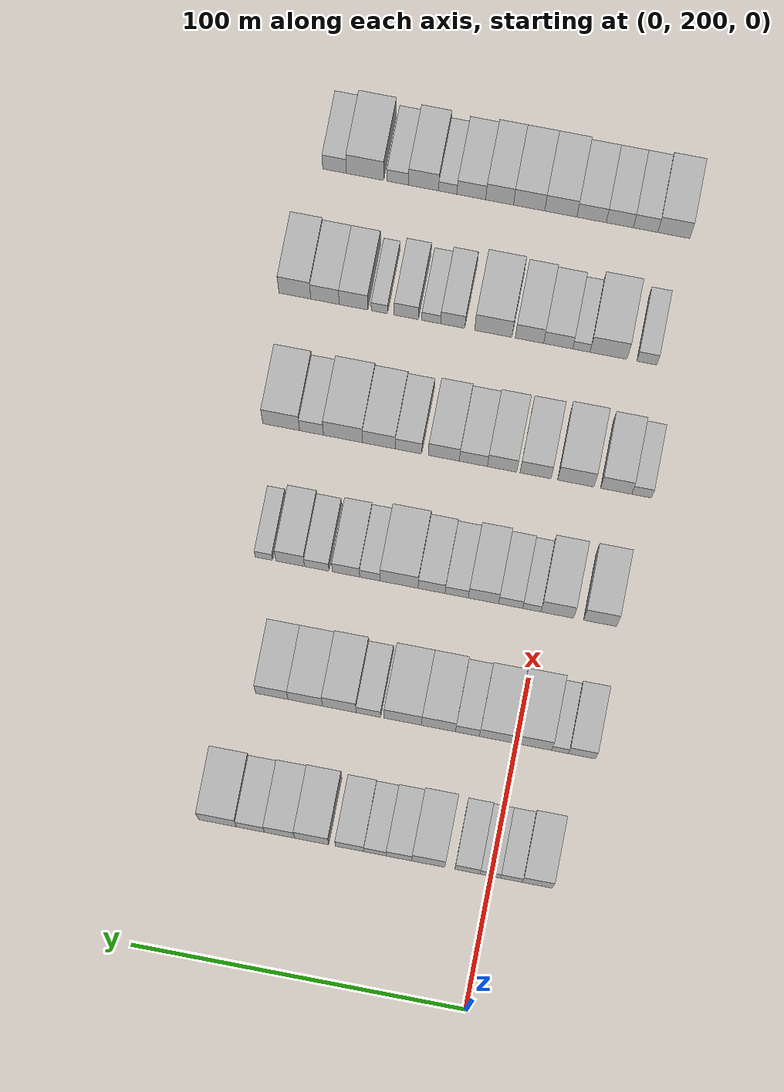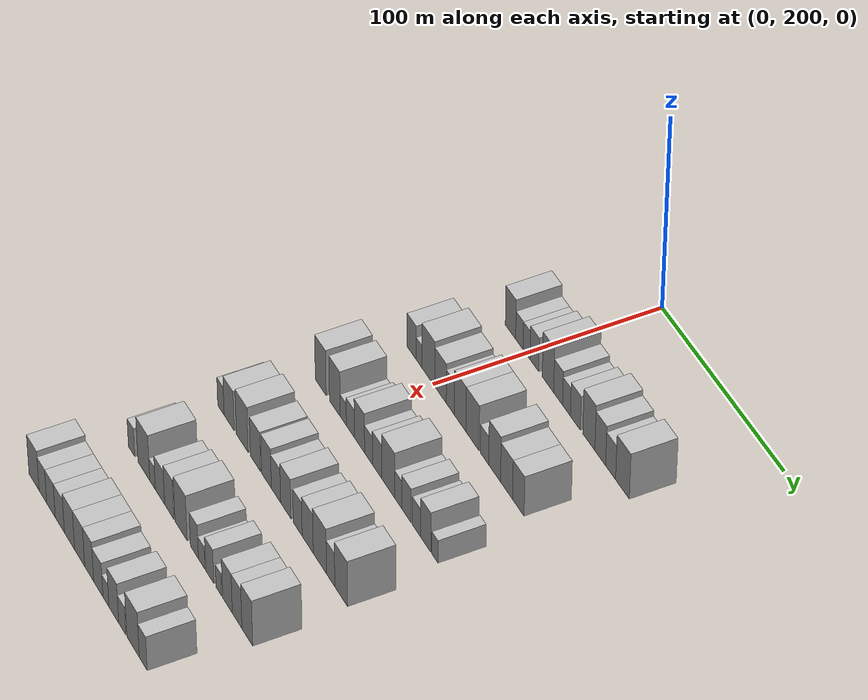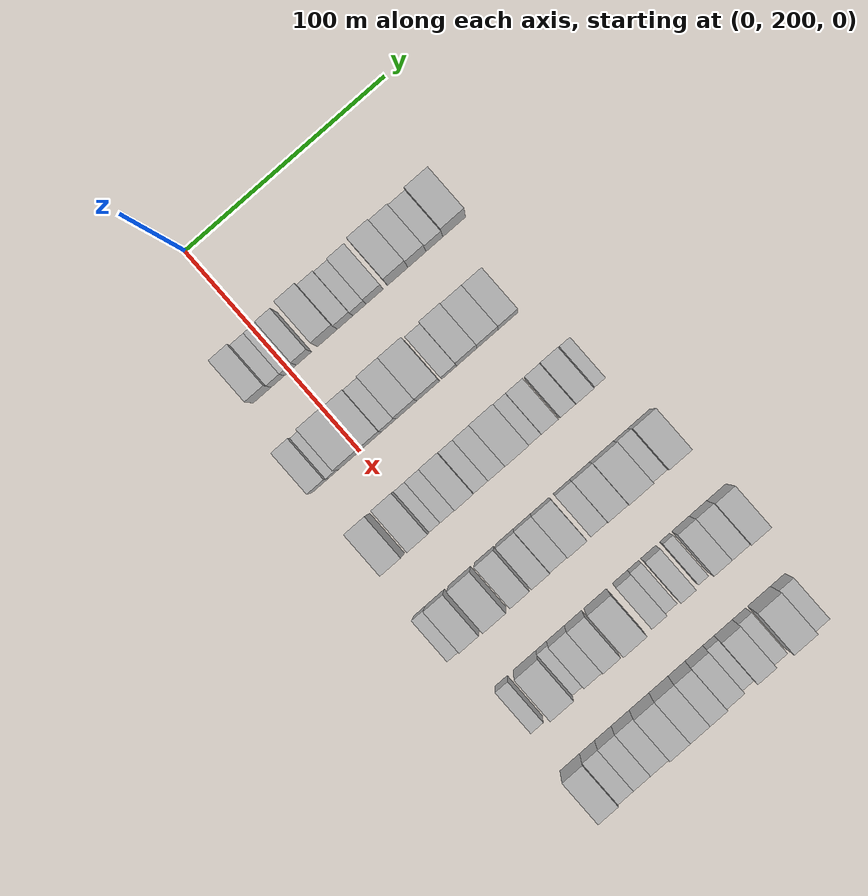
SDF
<sdf version="1.6">
 <world name="default">
  <model name="building_89">
   <static>1</static>
   <pose>50.0000 186.3237 0 0.000000 0.000000 0.000000</pose>
   <link name="link">
    <pose>0 0 10.50 0 0 0</pose>
    <collision name="collision"><geometry><box><size>20.0000 9.0448 21.0000</size></box></geometry></collision>
    <visual name="visual">
     <cast_shadows>0</cast_shadows>
     <geometry><box><size>20.0000 9.0448 21.0000</size></box></geometry>
     <material>
      <script>
       <uri>model://HANNAS_wall/materials/scripts</uri>
       <uri>model://HANNAS_wall/materials/textures</uri>
       <name>vrc/HANNAS_wall</name>
      </script>
     </material>
    </visual>
   </link>
  </model>
  <model name="building_90">
   <static>1</static>
   <pose>50.0000 194.1431 0 0.000000 0.000000 0.000000</pose>
   <link name="link">
    <pose>0 0 7.50 0 0 0</pose>
    <collision name="collision"><geometry><box><size>20.0000 6.5940 15.0000</size></box></geometry></collision>
    <visual name="visual">
     <cast_shadows>0</cast_shadows>
     <geometry><box><size>20.0000 6.5940 15.0000</size></box></geometry>
     <material>
      <script>
       <uri>model://HANNAS_wall/materials/scripts</uri>
       <uri>model://HANNAS_wall/materials/textures</uri>
       <name>vrc/HANNAS_wall</name>
      </script>
     </material>
    </visual>
   </link>
  </model>
  <model name="building_91">
   <static>1</static>
   <pose>50.0000 200.4898 0 0.000000 0.000000 0.000000</pose>
   <link name="link">
    <pose>0 0 7.50 0 0 0</pose>
    <collision name="collision"><geometry><box><size>20.0000 6.0995 15.0000</size></box></geometry></collision>
    <visual name="visual">
     <cast_shadows>0</cast_shadows>
     <geometry><box><size>20.0000 6.0995 15.0000</size></box></geometry>
     <material>
      <script>
       <uri>model://HANNAS_wall/materials/scripts</uri>
       <uri>model://HANNAS_wall/materials/textures</uri>
       <name>vrc/HANNAS_wall</name>
      </script>
     </material>
    </visual>
   </link>
  </model>
  <model name="building_92">
   <static>1</static>
   <pose>50.0000 207.2809 0 0.000000 0.000000 0.000000</pose>
   <link name="link">
    <pose>0 0 9.00 0 0 0</pose>
    <collision name="collision"><geometry><box><size>20.0000 7.4827 18.0000</size></box></geometry></collision>
    <visual name="visual">
     <cast_shadows>0</cast_shadows>
     <geometry><box><size>20.0000 7.4827 18.0000</size></box></geometry>
     <material>
      <script>
       <uri>model://HANNAS_wall/materials/scripts</uri>
       <uri>model://HANNAS_wall/materials/textures</uri>
       <name>vrc/HANNAS_wall</name>
      </script>
     </material>
    </visual>
   </link>
  </model>
  <model name="building_93">
   <static>1</static>
   <pose>50.0000 218.9835 0 0.000000 0.000000 0.000000</pose>
   <link name="link">
    <pose>0 0 12.00 0 0 0</pose>
    <collision name="collision"><geometry><box><size>20.0000 9.9226 24.0000</size></box></geometry></collision>
    <visual name="visual">
     <cast_shadows>0</cast_shadows>
     <geometry><box><size>20.0000 9.9226 24.0000</size></box></geometry>
     <material>
      <script>
       <uri>model://HANNAS_wall/materials/scripts</uri>
       <uri>model://HANNAS_wall/materials/textures</uri>
       <name>vrc/HANNAS_wall</name>
      </script>
     </material>
    </visual>
   </link>
  </model>
  <model name="building_94">
   <static>1</static>
   <pose>50.0000 227.7935 0 0.000000 0.000000 0.000000</pose>
   <link name="link">
    <pose>0 0 9.00 0 0 0</pose>
    <collision name="collision"><geometry><box><size>20.0000 7.6974 18.0000</size></box></geometry></collision>
    <visual name="visual">
     <cast_shadows>0</cast_shadows>
     <geometry><box><size>20.0000 7.6974 18.0000</size></box></geometry>
     <material>
      <script>
       <uri>model://HANNAS_wall/materials/scripts</uri>
       <uri>model://HANNAS_wall/materials/textures</uri>
       <name>vrc/HANNAS_wall</name>
      </script>
     </material>
    </visual>
   </link>
  </model>
  <model name="building_95">
   <static>1</static>
   <pose>50.0000 234.9745 0 0.000000 0.000000 0.000000</pose>
   <link name="link">
    <pose>0 0 7.50 0 0 0</pose>
    <collision name="collision"><geometry><box><size>20.0000 6.6645 15.0000</size></box></geometry></collision>
    <visual name="visual">
     <cast_shadows>0</cast_shadows>
     <geometry><box><size>20.0000 6.6645 15.0000</size></box></geometry>
     <material>
      <script>
       <uri>model://HANNAS_wall/materials/scripts</uri>
       <uri>model://HANNAS_wall/materials/textures</uri>
       <name>vrc/HANNAS_wall</name>
      </script>
     </material>
    </visual>
   </link>
  </model>
  <model name="building_96">
   <static>1</static>
   <pose>50.0000 242.5855 0 0.000000 0.000000 0.000000</pose>
   <link name="link">
    <pose>0 0 9.00 0 0 0</pose>
    <collision name="collision"><geometry><box><size>20.0000 8.5575 18.0000</size></box></geometry></collision>
    <visual name="visual">
     <cast_shadows>0</cast_shadows>
     <geometry><box><size>20.0000 8.5575 18.0000</size></box></geometry>
     <material>
      <script>
       <uri>model://HANNAS_wall/materials/scripts</uri>
       <uri>model://HANNAS_wall/materials/textures</uri>
       <name>vrc/HANNAS_wall</name>
      </script>
     </material>
    </visual>
   </link>
  </model>
  <model name="building_97">
   <static>1</static>
   <pose>50.0000 253.9846 0 0.000000 0.000000 0.000000</pose>
   <link name="link">
    <pose>0 0 12.00 0 0 0</pose>
    <collision name="collision"><geometry><box><size>20.0000 10.2407 24.0000</size></box></geometry></collision>
    <visual name="visual">
     <cast_shadows>0</cast_shadows>
     <geometry><box><size>20.0000 10.2407 24.0000</size></box></geometry>
     <material>
      <script>
       <uri>model://HANNAS_wall/materials/scripts</uri>
       <uri>model://HANNAS_wall/materials/textures</uri>
       <name>vrc/HANNAS_wall</name>
      </script>
     </material>
    </visual>
   </link>
  </model>
  <model name="building_98">
   <static>1</static>
   <pose>50.0000 263.6258 0 0.000000 0.000000 0.000000</pose>
   <link name="link">
    <pose>0 0 10.50 0 0 0</pose>
    <collision name="collision"><geometry><box><size>20.0000 9.0419 21.0000</size></box></geometry></collision>
    <visual name="visual">
     <cast_shadows>0</cast_shadows>
     <geometry><box><size>20.0000 9.0419 21.0000</size></box></geometry>
     <material>
      <script>
       <uri>model://HANNAS_wall/materials/scripts</uri>
       <uri>model://HANNAS_wall/materials/textures</uri>
       <name>vrc/HANNAS_wall</name>
      </script>
     </material>
    </visual>
   </link>
  </model>
  <model name="building_99">
   <static>1</static>
   <pose>50.0000 272.3318 0 0.000000 0.000000 0.000000</pose>
   <link name="link">
    <pose>0 0 9.00 0 0 0</pose>
    <collision name="collision"><geometry><box><size>20.0000 8.3701 18.0000</size></box></geometry></collision>
    <visual name="visual">
     <cast_shadows>0</cast_shadows>
     <geometry><box><size>20.0000 8.3701 18.0000</size></box></geometry>
     <material>
      <script>
       <uri>model://HANNAS_wall/materials/scripts</uri>
       <uri>model://HANNAS_wall/materials/textures</uri>
       <name>vrc/HANNAS_wall</name>
      </script>
     </material>
    </visual>
   </link>
  </model>
  <model name="building_100">
   <static>1</static>
   <pose>50.0000 282.2208 0 0.000000 0.000000 0.000000</pose>
   <link name="link">
    <pose>0 0 12.00 0 0 0</pose>
    <collision name="collision"><geometry><box><size>20.0000 11.4080 24.0000</size></box></geometry></collision>
    <visual name="visual">
     <cast_shadows>0</cast_shadows>
     <geometry><box><size>20.0000 11.4080 24.0000</size></box></geometry>
     <material>
      <script>
       <uri>model://HANNAS_wall/materials/scripts</uri>
       <uri>model://HANNAS_wall/materials/textures</uri>
       <name>vrc/HANNAS_wall</name>
      </script>
     </material>
    </visual>
   </link>
  </model>
  <model name="building_226">
   <static>1</static>
   <pose>90.0000 180.4390 0 0.000000 0.000000 0.000000</pose>
   <link name="link">
    <pose>0 0 9.00 0 0 0</pose>
    <collision name="collision"><geometry><box><size>20.0000 8.1884 18.0000</size></box></geometry></collision>
    <visual name="visual">
     <cast_shadows>0</cast_shadows>
     <geometry><box><size>20.0000 8.1884 18.0000</size></box></geometry>
     <material>
      <script>
       <uri>model://HANNAS_wall/materials/scripts</uri>
       <uri>model://HANNAS_wall/materials/textures</uri>
       <name>vrc/HANNAS_wall</name>
      </script>
     </material>
    </visual>
   </link>
  </model>
  <model name="building_227">
   <static>1</static>
   <pose>90.0000 187.0563 0 0.000000 0.000000 0.000000</pose>
   <link name="link">
    <pose>0 0 6.00 0 0 0</pose>
    <collision name="collision"><geometry><box><size>20.0000 5.0464 12.0000</size></box></geometry></collision>
    <visual name="visual">
     <cast_shadows>0</cast_shadows>
     <geometry><box><size>20.0000 5.0464 12.0000</size></box></geometry>
     <material>
      <script>
       <uri>model://HANNAS_wall/materials/scripts</uri>
       <uri>model://HANNAS_wall/materials/textures</uri>
       <name>vrc/HANNAS_wall</name>
      </script>
     </material>
    </visual>
   </link>
  </model>
  <model name="building_228">
   <static>1</static>
   <pose>90.0000 195.3474 0 0.000000 0.000000 0.000000</pose>
   <link name="link">
    <pose>0 0 12.00 0 0 0</pose>
    <collision name="collision"><geometry><box><size>20.0000 11.5357 24.0000</size></box></geometry></collision>
    <visual name="visual">
     <cast_shadows>0</cast_shadows>
     <geometry><box><size>20.0000 11.5357 24.0000</size></box></geometry>
     <material>
      <script>
       <uri>model://HANNAS_wall/materials/scripts</uri>
       <uri>model://HANNAS_wall/materials/textures</uri>
       <name>vrc/HANNAS_wall</name>
      </script>
     </material>
    </visual>
   </link>
  </model>
  <model name="building_229">
   <static>1</static>
   <pose>90.0000 206.2094 0 0.000000 0.000000 0.000000</pose>
   <link name="link">
    <pose>0 0 10.50 0 0 0</pose>
    <collision name="collision"><geometry><box><size>20.0000 10.1883 21.0000</size></box></geometry></collision>
    <visual name="visual">
     <cast_shadows>0</cast_shadows>
     <geometry><box><size>20.0000 10.1883 21.0000</size></box></geometry>
     <material>
      <script>
       <uri>model://HANNAS_wall/materials/scripts</uri>
       <uri>model://HANNAS_wall/materials/textures</uri>
       <name>vrc/HANNAS_wall</name>
      </script>
     </material>
    </visual>
   </link>
  </model>
  <model name="building_230">
   <static>1</static>
   <pose>90.0000 214.9155 0 0.000000 0.000000 0.000000</pose>
   <link name="link">
    <pose>0 0 9.00 0 0 0</pose>
    <collision name="collision"><geometry><box><size>20.0000 7.2239 18.0000</size></box></geometry></collision>
    <visual name="visual">
     <cast_shadows>0</cast_shadows>
     <geometry><box><size>20.0000 7.2239 18.0000</size></box></geometry>
     <material>
      <script>
       <uri>model://HANNAS_wall/materials/scripts</uri>
       <uri>model://HANNAS_wall/materials/textures</uri>
       <name>vrc/HANNAS_wall</name>
      </script>
     </material>
    </visual>
   </link>
  </model>
  <model name="building_231">
   <static>1</static>
   <pose>90.0000 223.6382 0 0.000000 0.000000 0.000000</pose>
   <link name="link">
    <pose>0 0 12.00 0 0 0</pose>
    <collision name="collision"><geometry><box><size>20.0000 10.2217 24.0000</size></box></geometry></collision>
    <visual name="visual">
     <cast_shadows>0</cast_shadows>
     <geometry><box><size>20.0000 10.2217 24.0000</size></box></geometry>
     <material>
      <script>
       <uri>model://HANNAS_wall/materials/scripts</uri>
       <uri>model://HANNAS_wall/materials/textures</uri>
       <name>vrc/HANNAS_wall</name>
      </script>
     </material>
    </visual>
   </link>
  </model>
  <model name="building_232">
   <static>1</static>
   <pose>90.0000 234.4106 0 0.000000 0.000000 0.000000</pose>
   <link name="link">
    <pose>0 0 12.00 0 0 0</pose>
    <collision name="collision"><geometry><box><size>20.0000 11.3230 24.0000</size></box></geometry></collision>
    <visual name="visual">
     <cast_shadows>0</cast_shadows>
     <geometry><box><size>20.0000 11.3230 24.0000</size></box></geometry>
     <material>
      <script>
       <uri>model://HANNAS_wall/materials/scripts</uri>
       <uri>model://HANNAS_wall/materials/textures</uri>
       <name>vrc/HANNAS_wall</name>
      </script>
     </material>
    </visual>
   </link>
  </model>
  <model name="building_233">
   <static>1</static>
   <pose>90.0000 244.7694 0 0.000000 0.000000 0.000000</pose>
   <link name="link">
    <pose>0 0 7.50 0 0 0</pose>
    <collision name="collision"><geometry><box><size>20.0000 7.3947 15.0000</size></box></geometry></collision>
    <visual name="visual">
     <cast_shadows>0</cast_shadows>
     <geometry><box><size>20.0000 7.3947 15.0000</size></box></geometry>
     <material>
      <script>
       <uri>model://HANNAS_wall/materials/scripts</uri>
       <uri>model://HANNAS_wall/materials/textures</uri>
       <name>vrc/HANNAS_wall</name>
      </script>
     </material>
    </visual>
   </link>
  </model>
  <model name="building_234">
   <static>1</static>
   <pose>90.0000 253.5661 0 0.000000 0.000000 0.000000</pose>
   <link name="link">
    <pose>0 0 12.00 0 0 0</pose>
    <collision name="collision"><geometry><box><size>20.0000 10.1986 24.0000</size></box></geometry></collision>
    <visual name="visual">
     <cast_shadows>0</cast_shadows>
     <geometry><box><size>20.0000 10.1986 24.0000</size></box></geometry>
     <material>
      <script>
       <uri>model://HANNAS_wall/materials/scripts</uri>
       <uri>model://HANNAS_wall/materials/textures</uri>
       <name>vrc/HANNAS_wall</name>
      </script>
     </material>
    </visual>
   </link>
  </model>
  <model name="building_235">
   <static>1</static>
   <pose>90.0000 263.8465 0 0.000000 0.000000 0.000000</pose>
   <link name="link">
    <pose>0 0 10.50 0 0 0</pose>
    <collision name="collision"><geometry><box><size>20.0000 10.3622 21.0000</size></box></geometry></collision>
    <visual name="visual">
     <cast_shadows>0</cast_shadows>
     <geometry><box><size>20.0000 10.3622 21.0000</size></box></geometry>
     <material>
      <script>
       <uri>model://HANNAS_wall/materials/scripts</uri>
       <uri>model://HANNAS_wall/materials/textures</uri>
       <name>vrc/HANNAS_wall</name>
      </script>
     </material>
    </visual>
   </link>
  </model>
  <model name="building_236">
   <static>1</static>
   <pose>90.0000 273.8949 0 0.000000 0.000000 0.000000</pose>
   <link name="link">
    <pose>0 0 10.50 0 0 0</pose>
    <collision name="collision"><geometry><box><size>20.0000 9.7345 21.0000</size></box></geometry></collision>
    <visual name="visual">
     <cast_shadows>0</cast_shadows>
     <geometry><box><size>20.0000 9.7345 21.0000</size></box></geometry>
     <material>
      <script>
       <uri>model://HANNAS_wall/materials/scripts</uri>
       <uri>model://HANNAS_wall/materials/textures</uri>
       <name>vrc/HANNAS_wall</name>
      </script>
     </material>
    </visual>
   </link>
  </model>
  <model name="building_363">
   <static>1</static>
   <pose>130.0000 182.4381 0 0.000000 0.000000 0.000000</pose>
   <link name="link">
    <pose>0 0 12.00 0 0 0</pose>
    <collision name="collision"><geometry><box><size>20.0000 9.9980 24.0000</size></box></geometry></collision>
    <visual name="visual">
     <cast_shadows>0</cast_shadows>
     <geometry><box><size>20.0000 9.9980 24.0000</size></box></geometry>
     <material>
      <script>
       <uri>model://HANNAS_wall/materials/scripts</uri>
       <uri>model://HANNAS_wall/materials/textures</uri>
       <name>vrc/HANNAS_wall</name>
      </script>
     </material>
    </visual>
   </link>
  </model>
  <model name="building_364">
   <static>1</static>
   <pose>130.0000 195.3754 0 0.000000 0.000000 0.000000</pose>
   <link name="link">
    <pose>0 0 12.00 0 0 0</pose>
    <collision name="collision"><geometry><box><size>20.0000 9.8765 24.0000</size></box></geometry></collision>
    <visual name="visual">
     <cast_shadows>0</cast_shadows>
     <geometry><box><size>20.0000 9.8765 24.0000</size></box></geometry>
     <material>
      <script>
       <uri>model://HANNAS_wall/materials/scripts</uri>
       <uri>model://HANNAS_wall/materials/textures</uri>
       <name>vrc/HANNAS_wall</name>
      </script>
     </material>
    </visual>
   </link>
  </model>
  <model name="building_365">
   <static>1</static>
   <pose>130.0000 203.0832 0 0.000000 0.000000 0.000000</pose>
   <link name="link">
    <pose>0 0 6.00 0 0 0</pose>
    <collision name="collision"><geometry><box><size>20.0000 5.5390 12.0000</size></box></geometry></collision>
    <visual name="visual">
     <cast_shadows>0</cast_shadows>
     <geometry><box><size>20.0000 5.5390 12.0000</size></box></geometry>
     <material>
      <script>
       <uri>model://HANNAS_wall/materials/scripts</uri>
       <uri>model://HANNAS_wall/materials/textures</uri>
       <name>vrc/HANNAS_wall</name>
      </script>
     </material>
    </visual>
   </link>
  </model>
  <model name="building_366">
   <static>1</static>
   <pose>130.0000 209.5107 0 0.000000 0.000000 0.000000</pose>
   <link name="link">
    <pose>0 0 7.50 0 0 0</pose>
    <collision name="collision"><geometry><box><size>20.0000 7.3158 15.0000</size></box></geometry></collision>
    <visual name="visual">
     <cast_shadows>0</cast_shadows>
     <geometry><box><size>20.0000 7.3158 15.0000</size></box></geometry>
     <material>
      <script>
       <uri>model://HANNAS_wall/materials/scripts</uri>
       <uri>model://HANNAS_wall/materials/textures</uri>
       <name>vrc/HANNAS_wall</name>
      </script>
     </material>
    </visual>
   </link>
  </model>
  <model name="building_367">
   <static>1</static>
   <pose>130.0000 217.7273 0 0.000000 0.000000 0.000000</pose>
   <link name="link">
    <pose>0 0 10.50 0 0 0</pose>
    <collision name="collision"><geometry><box><size>20.0000 9.1174 21.0000</size></box></geometry></collision>
    <visual name="visual">
     <cast_shadows>0</cast_shadows>
     <geometry><box><size>20.0000 9.1174 21.0000</size></box></geometry>
     <material>
      <script>
       <uri>model://HANNAS_wall/materials/scripts</uri>
       <uri>model://HANNAS_wall/materials/textures</uri>
       <name>vrc/HANNAS_wall</name>
      </script>
     </material>
    </visual>
   </link>
  </model>
  <model name="building_368">
   <static>1</static>
   <pose>130.0000 225.8231 0 0.000000 0.000000 0.000000</pose>
   <link name="link">
    <pose>0 0 7.50 0 0 0</pose>
    <collision name="collision"><geometry><box><size>20.0000 7.0741 15.0000</size></box></geometry></collision>
    <visual name="visual">
     <cast_shadows>0</cast_shadows>
     <geometry><box><size>20.0000 7.0741 15.0000</size></box></geometry>
     <material>
      <script>
       <uri>model://HANNAS_wall/materials/scripts</uri>
       <uri>model://HANNAS_wall/materials/textures</uri>
       <name>vrc/HANNAS_wall</name>
      </script>
     </material>
    </visual>
   </link>
  </model>
  <model name="building_369">
   <static>1</static>
   <pose>130.0000 233.4443 0 0.000000 0.000000 0.000000</pose>
   <link name="link">
    <pose>0 0 9.00 0 0 0</pose>
    <collision name="collision"><geometry><box><size>20.0000 8.1684 18.0000</size></box></geometry></collision>
    <visual name="visual">
     <cast_shadows>0</cast_shadows>
     <geometry><box><size>20.0000 8.1684 18.0000</size></box></geometry>
     <material>
      <script>
       <uri>model://HANNAS_wall/materials/scripts</uri>
       <uri>model://HANNAS_wall/materials/textures</uri>
       <name>vrc/HANNAS_wall</name>
      </script>
     </material>
    </visual>
   </link>
  </model>
  <model name="building_370">
   <static>1</static>
   <pose>130.0000 243.2981 0 0.000000 0.000000 0.000000</pose>
   <link name="link">
    <pose>0 0 12.00 0 0 0</pose>
    <collision name="collision"><geometry><box><size>20.0000 11.5391 24.0000</size></box></geometry></collision>
    <visual name="visual">
     <cast_shadows>0</cast_shadows>
     <geometry><box><size>20.0000 11.5391 24.0000</size></box></geometry>
     <material>
      <script>
       <uri>model://HANNAS_wall/materials/scripts</uri>
       <uri>model://HANNAS_wall/materials/textures</uri>
       <name>vrc/HANNAS_wall</name>
      </script>
     </material>
    </visual>
   </link>
  </model>
  <model name="building_371">
   <static>1</static>
   <pose>130.0000 252.1452 0 0.000000 0.000000 0.000000</pose>
   <link name="link">
    <pose>0 0 7.50 0 0 0</pose>
    <collision name="collision"><geometry><box><size>20.0000 6.1551 15.0000</size></box></geometry></collision>
    <visual name="visual">
     <cast_shadows>0</cast_shadows>
     <geometry><box><size>20.0000 6.1551 15.0000</size></box></geometry>
     <material>
      <script>
       <uri>model://HANNAS_wall/materials/scripts</uri>
       <uri>model://HANNAS_wall/materials/textures</uri>
       <name>vrc/HANNAS_wall</name>
      </script>
     </material>
    </visual>
   </link>
  </model>
  <model name="building_372">
   <static>1</static>
   <pose>130.0000 259.3646 0 0.000000 0.000000 0.000000</pose>
   <link name="link">
    <pose>0 0 9.00 0 0 0</pose>
    <collision name="collision"><geometry><box><size>20.0000 8.2837 18.0000</size></box></geometry></collision>
    <visual name="visual">
     <cast_shadows>0</cast_shadows>
     <geometry><box><size>20.0000 8.2837 18.0000</size></box></geometry>
     <material>
      <script>
       <uri>model://HANNAS_wall/materials/scripts</uri>
       <uri>model://HANNAS_wall/materials/textures</uri>
       <name>vrc/HANNAS_wall</name>
      </script>
     </material>
    </visual>
   </link>
  </model>
  <model name="building_373">
   <static>1</static>
   <pose>130.0000 268.2199 0 0.000000 0.000000 0.000000</pose>
   <link name="link">
    <pose>0 0 7.50 0 0 0</pose>
    <collision name="collision"><geometry><box><size>20.0000 7.4271 15.0000</size></box></geometry></collision>
    <visual name="visual">
     <cast_shadows>0</cast_shadows>
     <geometry><box><size>20.0000 7.4271 15.0000</size></box></geometry>
     <material>
      <script>
       <uri>model://HANNAS_wall/materials/scripts</uri>
       <uri>model://HANNAS_wall/materials/textures</uri>
       <name>vrc/HANNAS_wall</name>
      </script>
     </material>
    </visual>
   </link>
  </model>
  <model name="building_374">
   <static>1</static>
   <pose>130.0000 276.2735 0 0.000000 0.000000 0.000000</pose>
   <link name="link">
    <pose>0 0 10.50 0 0 0</pose>
    <collision name="collision"><geometry><box><size>20.0000 8.6801 21.0000</size></box></geometry></collision>
    <visual name="visual">
     <cast_shadows>0</cast_shadows>
     <geometry><box><size>20.0000 8.6801 21.0000</size></box></geometry>
     <material>
      <script>
       <uri>model://HANNAS_wall/materials/scripts</uri>
       <uri>model://HANNAS_wall/materials/textures</uri>
       <name>vrc/HANNAS_wall</name>
      </script>
     </material>
    </visual>
   </link>
  </model>
  <model name="building_375">
   <static>1</static>
   <pose>130.0000 284.2449 0 0.000000 0.000000 0.000000</pose>
   <link name="link">
    <pose>0 0 6.00 0 0 0</pose>
    <collision name="collision"><geometry><box><size>20.0000 5.2626 12.0000</size></box></geometry></collision>
    <visual name="visual">
     <cast_shadows>0</cast_shadows>
     <geometry><box><size>20.0000 5.2626 12.0000</size></box></geometry>
     <material>
      <script>
       <uri>model://HANNAS_wall/materials/scripts</uri>
       <uri>model://HANNAS_wall/materials/textures</uri>
       <name>vrc/HANNAS_wall</name>
      </script>
     </material>
    </visual>
   </link>
  </model>
  <model name="building_496">
   <static>1</static>
   <pose>170.0000 177.2768 0 0.000000 0.000000 0.000000</pose>
   <link name="link">
    <pose>0 0 7.50 0 0 0</pose>
    <collision name="collision"><geometry><box><size>20.0000 6.0180 15.0000</size></box></geometry></collision>
    <visual name="visual">
     <cast_shadows>0</cast_shadows>
     <geometry><box><size>20.0000 6.0180 15.0000</size></box></geometry>
     <material>
      <script>
       <uri>model://HANNAS_wall/materials/scripts</uri>
       <uri>model://HANNAS_wall/materials/textures</uri>
       <name>vrc/HANNAS_wall</name>
      </script>
     </material>
    </visual>
   </link>
  </model>
  <model name="building_497">
   <static>1</static>
   <pose>170.0000 185.0153 0 0.000000 0.000000 0.000000</pose>
   <link name="link">
    <pose>0 0 10.50 0 0 0</pose>
    <collision name="collision"><geometry><box><size>20.0000 9.4588 21.0000</size></box></geometry></collision>
    <visual name="visual">
     <cast_shadows>0</cast_shadows>
     <geometry><box><size>20.0000 9.4588 21.0000</size></box></geometry>
     <material>
      <script>
       <uri>model://HANNAS_wall/materials/scripts</uri>
       <uri>model://HANNAS_wall/materials/textures</uri>
       <name>vrc/HANNAS_wall</name>
      </script>
     </material>
    </visual>
   </link>
  </model>
  <model name="building_498">
   <static>1</static>
   <pose>170.0000 197.2737 0 0.000000 0.000000 0.000000</pose>
   <link name="link">
    <pose>0 0 12.00 0 0 0</pose>
    <collision name="collision"><geometry><box><size>20.0000 11.0580 24.0000</size></box></geometry></collision>
    <visual name="visual">
     <cast_shadows>0</cast_shadows>
     <geometry><box><size>20.0000 11.0580 24.0000</size></box></geometry>
     <material>
      <script>
       <uri>model://HANNAS_wall/materials/scripts</uri>
       <uri>model://HANNAS_wall/materials/textures</uri>
       <name>vrc/HANNAS_wall</name>
      </script>
     </material>
    </visual>
   </link>
  </model>
  <model name="building_499">
   <static>1</static>
   <pose>170.0000 209.5151 0 0.000000 0.000000 0.000000</pose>
   <link name="link">
    <pose>0 0 10.50 0 0 0</pose>
    <collision name="collision"><geometry><box><size>20.0000 9.4247 21.0000</size></box></geometry></collision>
    <visual name="visual">
     <cast_shadows>0</cast_shadows>
     <geometry><box><size>20.0000 9.4247 21.0000</size></box></geometry>
     <material>
      <script>
       <uri>model://HANNAS_wall/materials/scripts</uri>
       <uri>model://HANNAS_wall/materials/textures</uri>
       <name>vrc/HANNAS_wall</name>
      </script>
     </material>
    </visual>
   </link>
  </model>
  <model name="building_500">
   <static>1</static>
   <pose>170.0000 219.6842 0 0.000000 0.000000 0.000000</pose>
   <link name="link">
    <pose>0 0 10.50 0 0 0</pose>
    <collision name="collision"><geometry><box><size>20.0000 8.9135 21.0000</size></box></geometry></collision>
    <visual name="visual">
     <cast_shadows>0</cast_shadows>
     <geometry><box><size>20.0000 8.9135 21.0000</size></box></geometry>
     <material>
      <script>
       <uri>model://HANNAS_wall/materials/scripts</uri>
       <uri>model://HANNAS_wall/materials/textures</uri>
       <name>vrc/HANNAS_wall</name>
      </script>
     </material>
    </visual>
   </link>
  </model>
  <model name="building_501">
   <static>1</static>
   <pose>170.0000 228.4091 0 0.000000 0.000000 0.000000</pose>
   <link name="link">
    <pose>0 0 9.00 0 0 0</pose>
    <collision name="collision"><geometry><box><size>20.0000 8.5362 18.0000</size></box></geometry></collision>
    <visual name="visual">
     <cast_shadows>0</cast_shadows>
     <geometry><box><size>20.0000 8.5362 18.0000</size></box></geometry>
     <material>
      <script>
       <uri>model://HANNAS_wall/materials/scripts</uri>
       <uri>model://HANNAS_wall/materials/textures</uri>
       <name>vrc/HANNAS_wall</name>
      </script>
     </material>
    </visual>
   </link>
  </model>
  <model name="building_502">
   <static>1</static>
   <pose>170.0000 237.4045 0 0.000000 0.000000 0.000000</pose>
   <link name="link">
    <pose>0 0 10.50 0 0 0</pose>
    <collision name="collision"><geometry><box><size>20.0000 9.4547 21.0000</size></box></geometry></collision>
    <visual name="visual">
     <cast_shadows>0</cast_shadows>
     <geometry><box><size>20.0000 9.4547 21.0000</size></box></geometry>
     <material>
      <script>
       <uri>model://HANNAS_wall/materials/scripts</uri>
       <uri>model://HANNAS_wall/materials/textures</uri>
       <name>vrc/HANNAS_wall</name>
      </script>
     </material>
    </visual>
   </link>
  </model>
  <model name="building_503">
   <static>1</static>
   <pose>170.0000 248.1727 0 0.000000 0.000000 0.000000</pose>
   <link name="link">
    <pose>0 0 9.00 0 0 0</pose>
    <collision name="collision"><geometry><box><size>20.0000 8.0817 18.0000</size></box></geometry></collision>
    <visual name="visual">
     <cast_shadows>0</cast_shadows>
     <geometry><box><size>20.0000 8.0817 18.0000</size></box></geometry>
     <material>
      <script>
       <uri>model://HANNAS_wall/materials/scripts</uri>
       <uri>model://HANNAS_wall/materials/textures</uri>
       <name>vrc/HANNAS_wall</name>
      </script>
     </material>
    </visual>
   </link>
  </model>
  <model name="building_504">
   <static>1</static>
   <pose>170.0000 257.1710 0 0.000000 0.000000 0.000000</pose>
   <link name="link">
    <pose>0 0 10.50 0 0 0</pose>
    <collision name="collision"><geometry><box><size>20.0000 9.9150 21.0000</size></box></geometry></collision>
    <visual name="visual">
     <cast_shadows>0</cast_shadows>
     <geometry><box><size>20.0000 9.9150 21.0000</size></box></geometry>
     <material>
      <script>
       <uri>model://HANNAS_wall/materials/scripts</uri>
       <uri>model://HANNAS_wall/materials/textures</uri>
       <name>vrc/HANNAS_wall</name>
      </script>
     </material>
    </visual>
   </link>
  </model>
  <model name="building_505">
   <static>1</static>
   <pose>170.0000 268.0798 0 0.000000 0.000000 0.000000</pose>
   <link name="link">
    <pose>0 0 12.00 0 0 0</pose>
    <collision name="collision"><geometry><box><size>20.0000 11.9026 24.0000</size></box></geometry></collision>
    <visual name="visual">
     <cast_shadows>0</cast_shadows>
     <geometry><box><size>20.0000 11.9026 24.0000</size></box></geometry>
     <material>
      <script>
       <uri>model://HANNAS_wall/materials/scripts</uri>
       <uri>model://HANNAS_wall/materials/textures</uri>
       <name>vrc/HANNAS_wall</name>
      </script>
     </material>
    </visual>
   </link>
  </model>
  <model name="building_506">
   <static>1</static>
   <pose>170.0000 277.6757 0 0.000000 0.000000 0.000000</pose>
   <link name="link">
    <pose>0 0 9.00 0 0 0</pose>
    <collision name="collision"><geometry><box><size>20.0000 7.2891 18.0000</size></box></geometry></collision>
    <visual name="visual">
     <cast_shadows>0</cast_shadows>
     <geometry><box><size>20.0000 7.2891 18.0000</size></box></geometry>
     <material>
      <script>
       <uri>model://HANNAS_wall/materials/scripts</uri>
       <uri>model://HANNAS_wall/materials/textures</uri>
       <name>vrc/HANNAS_wall</name>
      </script>
     </material>
    </visual>
   </link>
  </model>
  <model name="building_507">
   <static>1</static>
   <pose>170.0000 286.9156 0 0.000000 0.000000 0.000000</pose>
   <link name="link">
    <pose>0 0 12.00 0 0 0</pose>
    <collision name="collision"><geometry><box><size>20.0000 11.1908 24.0000</size></box></geometry></collision>
    <visual name="visual">
     <cast_shadows>0</cast_shadows>
     <geometry><box><size>20.0000 11.1908 24.0000</size></box></geometry>
     <material>
      <script>
       <uri>model://HANNAS_wall/materials/scripts</uri>
       <uri>model://HANNAS_wall/materials/textures</uri>
       <name>vrc/HANNAS_wall</name>
      </script>
     </material>
    </visual>
   </link>
  </model>
  <model name="building_633">
   <static>1</static>
   <pose>210.0000 183.0865 0 0.000000 0.000000 0.000000</pose>
   <link name="link">
    <pose>0 0 7.50 0 0 0</pose>
    <collision name="collision"><geometry><box><size>20.0000 6.1257 15.0000</size></box></geometry></collision>
    <visual name="visual">
     <cast_shadows>0</cast_shadows>
     <geometry><box><size>20.0000 6.1257 15.0000</size></box></geometry>
     <material>
      <script>
       <uri>model://HANNAS_wall/materials/scripts</uri>
       <uri>model://HANNAS_wall/materials/textures</uri>
       <name>vrc/HANNAS_wall</name>
      </script>
     </material>
    </visual>
   </link>
  </model>
  <model name="building_634">
   <static>1</static>
   <pose>210.0000 194.7895 0 0.000000 0.000000 0.000000</pose>
   <link name="link">
    <pose>0 0 12.00 0 0 0</pose>
    <collision name="collision"><geometry><box><size>20.0000 11.2802 24.0000</size></box></geometry></collision>
    <visual name="visual">
     <cast_shadows>0</cast_shadows>
     <geometry><box><size>20.0000 11.2802 24.0000</size></box></geometry>
     <material>
      <script>
       <uri>model://HANNAS_wall/materials/scripts</uri>
       <uri>model://HANNAS_wall/materials/textures</uri>
       <name>vrc/HANNAS_wall</name>
      </script>
     </material>
    </visual>
   </link>
  </model>
  <model name="building_635">
   <static>1</static>
   <pose>210.0000 203.0801 0 0.000000 0.000000 0.000000</pose>
   <link name="link">
    <pose>0 0 6.00 0 0 0</pose>
    <collision name="collision"><geometry><box><size>20.0000 5.3011 12.0000</size></box></geometry></collision>
    <visual name="visual">
     <cast_shadows>0</cast_shadows>
     <geometry><box><size>20.0000 5.3011 12.0000</size></box></geometry>
     <material>
      <script>
       <uri>model://HANNAS_wall/materials/scripts</uri>
       <uri>model://HANNAS_wall/materials/textures</uri>
       <name>vrc/HANNAS_wall</name>
      </script>
     </material>
    </visual>
   </link>
  </model>
  <model name="building_636">
   <static>1</static>
   <pose>210.0000 210.1639 0 0.000000 0.000000 0.000000</pose>
   <link name="link">
    <pose>0 0 9.00 0 0 0</pose>
    <collision name="collision"><geometry><box><size>20.0000 8.8664 18.0000</size></box></geometry></collision>
    <visual name="visual">
     <cast_shadows>0</cast_shadows>
     <geometry><box><size>20.0000 8.8664 18.0000</size></box></geometry>
     <material>
      <script>
       <uri>model://HANNAS_wall/materials/scripts</uri>
       <uri>model://HANNAS_wall/materials/textures</uri>
       <name>vrc/HANNAS_wall</name>
      </script>
     </material>
    </visual>
   </link>
  </model>
  <model name="building_637">
   <static>1</static>
   <pose>210.0000 218.9427 0 0.000000 0.000000 0.000000</pose>
   <link name="link">
    <pose>0 0 10.50 0 0 0</pose>
    <collision name="collision"><geometry><box><size>20.0000 8.6911 21.0000</size></box></geometry></collision>
    <visual name="visual">
     <cast_shadows>0</cast_shadows>
     <geometry><box><size>20.0000 8.6911 21.0000</size></box></geometry>
     <material>
      <script>
       <uri>model://HANNAS_wall/materials/scripts</uri>
       <uri>model://HANNAS_wall/materials/textures</uri>
       <name>vrc/HANNAS_wall</name>
      </script>
     </material>
    </visual>
   </link>
  </model>
  <model name="building_638">
   <static>1</static>
   <pose>210.0000 229.9833 0 0.000000 0.000000 0.000000</pose>
   <link name="link">
    <pose>0 0 12.00 0 0 0</pose>
    <collision name="collision"><geometry><box><size>20.0000 11.3901 24.0000</size></box></geometry></collision>
    <visual name="visual">
     <cast_shadows>0</cast_shadows>
     <geometry><box><size>20.0000 11.3901 24.0000</size></box></geometry>
     <material>
      <script>
       <uri>model://HANNAS_wall/materials/scripts</uri>
       <uri>model://HANNAS_wall/materials/textures</uri>
       <name>vrc/HANNAS_wall</name>
      </script>
     </material>
    </visual>
   </link>
  </model>
  <model name="building_639">
   <static>1</static>
   <pose>210.0000 242.3875 0 0.000000 0.000000 0.000000</pose>
   <link name="link">
    <pose>0 0 9.00 0 0 0</pose>
    <collision name="collision"><geometry><box><size>20.0000 7.4184 18.0000</size></box></geometry></collision>
    <visual name="visual">
     <cast_shadows>0</cast_shadows>
     <geometry><box><size>20.0000 7.4184 18.0000</size></box></geometry>
     <material>
      <script>
       <uri>model://HANNAS_wall/materials/scripts</uri>
       <uri>model://HANNAS_wall/materials/textures</uri>
       <name>vrc/HANNAS_wall</name>
      </script>
     </material>
    </visual>
   </link>
  </model>
  <model name="building_640">
   <static>1</static>
   <pose>210.0000 248.9740 0 0.000000 0.000000 0.000000</pose>
   <link name="link">
    <pose>0 0 6.00 0 0 0</pose>
    <collision name="collision"><geometry><box><size>20.0000 5.7545 12.0000</size></box></geometry></collision>
    <visual name="visual">
     <cast_shadows>0</cast_shadows>
     <geometry><box><size>20.0000 5.7545 12.0000</size></box></geometry>
     <material>
      <script>
       <uri>model://HANNAS_wall/materials/scripts</uri>
       <uri>model://HANNAS_wall/materials/textures</uri>
       <name>vrc/HANNAS_wall</name>
      </script>
     </material>
    </visual>
   </link>
  </model>
  <model name="building_641">
   <static>1</static>
   <pose>210.0000 256.5785 0 0.000000 0.000000 0.000000</pose>
   <link name="link">
    <pose>0 0 9.00 0 0 0</pose>
    <collision name="collision"><geometry><box><size>20.0000 7.4546 18.0000</size></box></geometry></collision>
    <visual name="visual">
     <cast_shadows>0</cast_shadows>
     <geometry><box><size>20.0000 7.4546 18.0000</size></box></geometry>
     <material>
      <script>
       <uri>model://HANNAS_wall/materials/scripts</uri>
       <uri>model://HANNAS_wall/materials/textures</uri>
       <name>vrc/HANNAS_wall</name>
      </script>
     </material>
    </visual>
   </link>
  </model>
  <model name="building_642">
   <static>1</static>
   <pose>210.0000 264.8101 0 0.000000 0.000000 0.000000</pose>
   <link name="link">
    <pose>0 0 6.00 0 0 0</pose>
    <collision name="collision"><geometry><box><size>20.0000 5.0085 12.0000</size></box></geometry></collision>
    <visual name="visual">
     <cast_shadows>0</cast_shadows>
     <geometry><box><size>20.0000 5.0085 12.0000</size></box></geometry>
     <material>
      <script>
       <uri>model://HANNAS_wall/materials/scripts</uri>
       <uri>model://HANNAS_wall/materials/textures</uri>
       <name>vrc/HANNAS_wall</name>
      </script>
     </material>
    </visual>
   </link>
  </model>
  <model name="building_643">
   <static>1</static>
   <pose>210.0000 272.7145 0 0.000000 0.000000 0.000000</pose>
   <link name="link">
    <pose>0 0 10.50 0 0 0</pose>
    <collision name="collision"><geometry><box><size>20.0000 8.8003 21.0000</size></box></geometry></collision>
    <visual name="visual">
     <cast_shadows>0</cast_shadows>
     <geometry><box><size>20.0000 8.8003 21.0000</size></box></geometry>
     <material>
      <script>
       <uri>model://HANNAS_wall/materials/scripts</uri>
       <uri>model://HANNAS_wall/materials/textures</uri>
       <name>vrc/HANNAS_wall</name>
      </script>
     </material>
    </visual>
   </link>
  </model>
  <model name="building_644">
   <static>1</static>
   <pose>210.0000 281.4620 0 0.000000 0.000000 0.000000</pose>
   <link name="link">
    <pose>0 0 10.50 0 0 0</pose>
    <collision name="collision"><geometry><box><size>20.0000 8.6946 21.0000</size></box></geometry></collision>
    <visual name="visual">
     <cast_shadows>0</cast_shadows>
     <geometry><box><size>20.0000 8.6946 21.0000</size></box></geometry>
     <material>
      <script>
       <uri>model://HANNAS_wall/materials/scripts</uri>
       <uri>model://HANNAS_wall/materials/textures</uri>
       <name>vrc/HANNAS_wall</name>
      </script>
     </material>
    </visual>
   </link>
  </model>
  <model name="building_645">
   <static>1</static>
   <pose>210.0000 290.6726 0 0.000000 0.000000 0.000000</pose>
   <link name="link">
    <pose>0 0 12.00 0 0 0</pose>
    <collision name="collision"><geometry><box><size>20.0000 9.7266 24.0000</size></box></geometry></collision>
    <visual name="visual">
     <cast_shadows>0</cast_shadows>
     <geometry><box><size>20.0000 9.7266 24.0000</size></box></geometry>
     <material>
      <script>
       <uri>model://HANNAS_wall/materials/scripts</uri>
       <uri>model://HANNAS_wall/materials/textures</uri>
       <name>vrc/HANNAS_wall</name>
      </script>
     </material>
    </visual>
   </link>
  </model>
  <model name="building_765">
   <static>1</static>
   <pose>250.0000 182.2389 0 0.000000 0.000000 0.000000</pose>
   <link name="link">
    <pose>0 0 10.50 0 0 0</pose>
    <collision name="collision"><geometry><box><size>20.0000 9.8307 21.0000</size></box></geometry></collision>
    <visual name="visual">
     <cast_shadows>0</cast_shadows>
     <geometry><box><size>20.0000 9.8307 21.0000</size></box></geometry>
     <material>
      <script>
       <uri>model://HANNAS_wall/materials/scripts</uri>
       <uri>model://HANNAS_wall/materials/textures</uri>
       <name>vrc/HANNAS_wall</name>
      </script>
     </material>
    </visual>
   </link>
  </model>
  <model name="building_766">
   <static>1</static>
   <pose>250.0000 190.9109 0 0.000000 0.000000 0.000000</pose>
   <link name="link">
    <pose>0 0 9.00 0 0 0</pose>
    <collision name="collision"><geometry><box><size>20.0000 7.5133 18.0000</size></box></geometry></collision>
    <visual name="visual">
     <cast_shadows>0</cast_shadows>
     <geometry><box><size>20.0000 7.5133 18.0000</size></box></geometry>
     <material>
      <script>
       <uri>model://HANNAS_wall/materials/scripts</uri>
       <uri>model://HANNAS_wall/materials/textures</uri>
       <name>vrc/HANNAS_wall</name>
      </script>
     </material>
    </visual>
   </link>
  </model>
  <model name="building_767">
   <static>1</static>
   <pose>250.0000 198.8182 0 0.000000 0.000000 0.000000</pose>
   <link name="link">
    <pose>0 0 9.00 0 0 0</pose>
    <collision name="collision"><geometry><box><size>20.0000 8.3014 18.0000</size></box></geometry></collision>
    <visual name="visual">
     <cast_shadows>0</cast_shadows>
     <geometry><box><size>20.0000 8.3014 18.0000</size></box></geometry>
     <material>
      <script>
       <uri>model://HANNAS_wall/materials/scripts</uri>
       <uri>model://HANNAS_wall/materials/textures</uri>
       <name>vrc/HANNAS_wall</name>
      </script>
     </material>
    </visual>
   </link>
  </model>
  <model name="building_768">
   <static>1</static>
   <pose>250.0000 207.4627 0 0.000000 0.000000 0.000000</pose>
   <link name="link">
    <pose>0 0 9.00 0 0 0</pose>
    <collision name="collision"><geometry><box><size>20.0000 8.9875 18.0000</size></box></geometry></collision>
    <visual name="visual">
     <cast_shadows>0</cast_shadows>
     <geometry><box><size>20.0000 8.9875 18.0000</size></box></geometry>
     <material>
      <script>
       <uri>model://HANNAS_wall/materials/scripts</uri>
       <uri>model://HANNAS_wall/materials/textures</uri>
       <name>vrc/HANNAS_wall</name>
      </script>
     </material>
    </visual>
   </link>
  </model>
  <model name="building_769">
   <static>1</static>
   <pose>250.0000 216.8941 0 0.000000 0.000000 0.000000</pose>
   <link name="link">
    <pose>0 0 10.50 0 0 0</pose>
    <collision name="collision"><geometry><box><size>20.0000 9.8754 21.0000</size></box></geometry></collision>
    <visual name="visual">
     <cast_shadows>0</cast_shadows>
     <geometry><box><size>20.0000 9.8754 21.0000</size></box></geometry>
     <material>
      <script>
       <uri>model://HANNAS_wall/materials/scripts</uri>
       <uri>model://HANNAS_wall/materials/textures</uri>
       <name>vrc/HANNAS_wall</name>
      </script>
     </material>
    </visual>
   </link>
  </model>
  <model name="building_770">
   <static>1</static>
   <pose>250.0000 226.6108 0 0.000000 0.000000 0.000000</pose>
   <link name="link">
    <pose>0 0 10.50 0 0 0</pose>
    <collision name="collision"><geometry><box><size>20.0000 9.5579 21.0000</size></box></geometry></collision>
    <visual name="visual">
     <cast_shadows>0</cast_shadows>
     <geometry><box><size>20.0000 9.5579 21.0000</size></box></geometry>
     <material>
      <script>
       <uri>model://HANNAS_wall/materials/scripts</uri>
       <uri>model://HANNAS_wall/materials/textures</uri>
       <name>vrc/HANNAS_wall</name>
      </script>
     </material>
    </visual>
   </link>
  </model>
  <model name="building_771">
   <static>1</static>
   <pose>250.0000 235.6609 0 0.000000 0.000000 0.000000</pose>
   <link name="link">
    <pose>0 0 10.50 0 0 0</pose>
    <collision name="collision"><geometry><box><size>20.0000 8.5424 21.0000</size></box></geometry></collision>
    <visual name="visual">
     <cast_shadows>0</cast_shadows>
     <geometry><box><size>20.0000 8.5424 21.0000</size></box></geometry>
     <material>
      <script>
       <uri>model://HANNAS_wall/materials/scripts</uri>
       <uri>model://HANNAS_wall/materials/textures</uri>
       <name>vrc/HANNAS_wall</name>
      </script>
     </material>
    </visual>
   </link>
  </model>
  <model name="building_772">
   <static>1</static>
   <pose>250.0000 244.3441 0 0.000000 0.000000 0.000000</pose>
   <link name="link">
    <pose>0 0 9.00 0 0 0</pose>
    <collision name="collision"><geometry><box><size>20.0000 8.8239 18.0000</size></box></geometry></collision>
    <visual name="visual">
     <cast_shadows>0</cast_shadows>
     <geometry><box><size>20.0000 8.8239 18.0000</size></box></geometry>
     <material>
      <script>
       <uri>model://HANNAS_wall/materials/scripts</uri>
       <uri>model://HANNAS_wall/materials/textures</uri>
       <name>vrc/HANNAS_wall</name>
      </script>
     </material>
    </visual>
   </link>
  </model>
  <model name="building_773">
   <static>1</static>
   <pose>250.0000 251.5804 0 0.000000 0.000000 0.000000</pose>
   <link name="link">
    <pose>0 0 6.00 0 0 0</pose>
    <collision name="collision"><geometry><box><size>20.0000 5.6488 12.0000</size></box></geometry></collision>
    <visual name="visual">
     <cast_shadows>0</cast_shadows>
     <geometry><box><size>20.0000 5.6488 12.0000</size></box></geometry>
     <material>
      <script>
       <uri>model://HANNAS_wall/materials/scripts</uri>
       <uri>model://HANNAS_wall/materials/textures</uri>
       <name>vrc/HANNAS_wall</name>
      </script>
     </material>
    </visual>
   </link>
  </model>
  <model name="building_774">
   <static>1</static>
   <pose>250.0000 259.0166 0 0.000000 0.000000 0.000000</pose>
   <link name="link">
    <pose>0 0 10.50 0 0 0</pose>
    <collision name="collision"><geometry><box><size>20.0000 9.2235 21.0000</size></box></geometry></collision>
    <visual name="visual">
     <cast_shadows>0</cast_shadows>
     <geometry><box><size>20.0000 9.2235 21.0000</size></box></geometry>
     <material>
      <script>
       <uri>model://HANNAS_wall/materials/scripts</uri>
       <uri>model://HANNAS_wall/materials/textures</uri>
       <name>vrc/HANNAS_wall</name>
      </script>
     </material>
    </visual>
   </link>
  </model>
  <model name="building_775">
   <static>1</static>
   <pose>250.0000 266.9344 0 0.000000 0.000000 0.000000</pose>
   <link name="link">
    <pose>0 0 7.50 0 0 0</pose>
    <collision name="collision"><geometry><box><size>20.0000 6.6122 15.0000</size></box></geometry></collision>
    <visual name="visual">
     <cast_shadows>0</cast_shadows>
     <geometry><box><size>20.0000 6.6122 15.0000</size></box></geometry>
     <material>
      <script>
       <uri>model://HANNAS_wall/materials/scripts</uri>
       <uri>model://HANNAS_wall/materials/textures</uri>
       <name>vrc/HANNAS_wall</name>
      </script>
     </material>
    </visual>
   </link>
  </model>
  <model name="building_776">
   <static>1</static>
   <pose>250.0000 276.9787 0 0.000000 0.000000 0.000000</pose>
   <link name="link">
    <pose>0 0 12.00 0 0 0</pose>
    <collision name="collision"><geometry><box><size>20.0000 11.4763 24.0000</size></box></geometry></collision>
    <visual name="visual">
     <cast_shadows>0</cast_shadows>
     <geometry><box><size>20.0000 11.4763 24.0000</size></box></geometry>
     <material>
      <script>
       <uri>model://HANNAS_wall/materials/scripts</uri>
       <uri>model://HANNAS_wall/materials/textures</uri>
       <name>vrc/HANNAS_wall</name>
      </script>
     </material>
    </visual>
   </link>
  </model>
  <model name="building_777">
   <static>1</static>
   <pose>250.0000 286.3530 0 0.000000 0.000000 0.000000</pose>
   <link name="link">
    <pose>0 0 9.00 0 0 0</pose>
    <collision name="collision"><geometry><box><size>20.0000 7.2723 18.0000</size></box></geometry></collision>
    <visual name="visual">
     <cast_shadows>0</cast_shadows>
     <geometry><box><size>20.0000 7.2723 18.0000</size></box></geometry>
     <material>
      <script>
       <uri>model://HANNAS_wall/materials/scripts</uri>
       <uri>model://HANNAS_wall/materials/textures</uri>
       <name>vrc/HANNAS_wall</name>
      </script>
     </material>
    </visual>
   </link>
  </model>
 </world>
</sdf>
